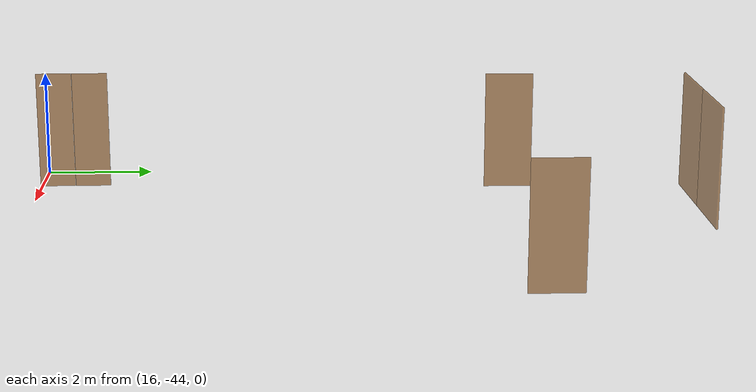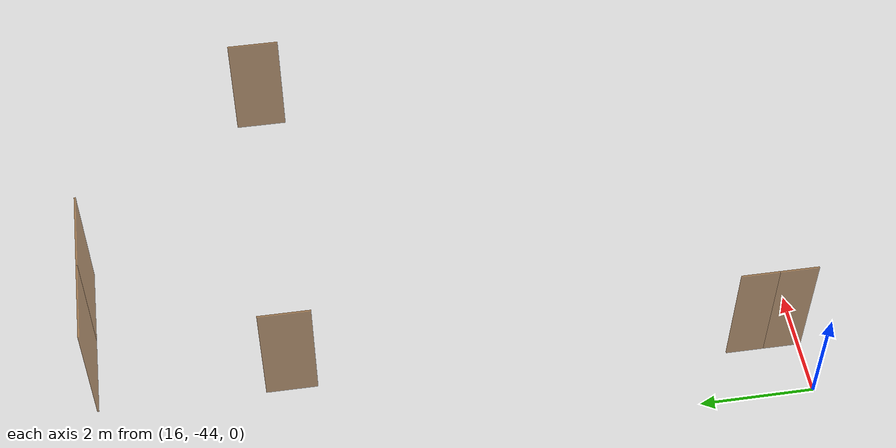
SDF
<sdf version="1.7">
 <world name="sim_world">
  <model name="door1">
   <pose>18.859094387755107 -31.709056122448985 0.0 0 0 3.141592653589793</pose>
   <link name="right">
    <pose>0.7511288265306124 0 1.11 0 0 0</pose>
    <visual name="right_visual">
     <geometry><box><size>1.4922576530612248 0.03 2.2</size></box></geometry>
     <material>
      <ambient>0.5 0.25 0 0.6</ambient>
      <diffuse>0.5 0.25 0 0.6</diffuse>
      <pbr><metal><metalness>0.0</metalness></metal></pbr>
     </material>
    </visual>
    <collision name="right_collision">
     <geometry><box><size>1.4922576530612248 0.03 2.2</size></box></geometry>
     <surface><contact><collide_bitmask>0x02</collide_bitmask></contact></surface>
    </collision>
    <inertial>
     <mass>50.0</mass>
     <inertia><ixx>20.17041666666667</ixx><iyy>29.445137096332484</iyy><izz>9.282220429665813</izz></inertia>
    </inertial>
   </link>
   <joint name="right_joint" type="revolute">
    <parent>world</parent>
    <child>right</child>
    <axis><xyz>0 0 -1</xyz><limit><lower>0</lower><upper>1.57</upper></limit></axis>
    <pose>0.7511288265306124 0 0 0 0 0</pose>
   </joint>
   <link name="left">
    <pose>-0.7511288265306124 0 1.11 0 0 0</pose>
    <visual name="left_visual">
     <geometry><box><size>1.4922576530612248 0.03 2.2</size></box></geometry>
     <material>
      <ambient>0.5 0.25 0 0.6</ambient>
      <diffuse>0.5 0.25 0 0.6</diffuse>
      <pbr><metal><metalness>0.0</metalness></metal></pbr>
     </material>
    </visual>
    <collision name="left_collision">
     <geometry><box><size>1.4922576530612248 0.03 2.2</size></box></geometry>
     <surface><contact><collide_bitmask>0x02</collide_bitmask></contact></surface>
    </collision>
    <inertial>
     <mass>50.0</mass>
     <inertia><ixx>20.17041666666667</ixx><iyy>29.445137096332484</iyy><izz>9.282220429665813</izz></inertia>
    </inertial>
   </link>
   <joint name="left_joint" type="revolute">
    <parent>world</parent>
    <child>left</child>
    <axis><xyz>0 0 -1</xyz><limit><lower>-1.57</lower><upper>0</upper></limit></axis>
    <pose>-0.7511288265306124 0 0 0 0 0</pose>
   </joint>
   <plugin name="register_component" filename="libregister_component.so">
    <component name="Door">
     <v_max_door>0.5</v_max_door>
     <a_max_door>0.3</a_max_door>
     <a_nom_door>0.15</a_nom_door>
     <dx_min_door>0.01</dx_min_door>
     <f_max_door>500.0</f_max_door>
     <ros_interface>true</ros_interface>
     <door name="door1" type="DoubleSwingDoor" left_joint_name="left_joint" right_joint_name="right_joint"/>
    </component>
   </plugin>
  </model>
  <model name="door2">
   <pose>17.345918367346943 -35.05772959183675 0.0 0 0 1.5707963267948966</pose>
   <link name="right">
    <pose>0 0 1.11 0 0 0</pose>
    <visual name="right_visual">
     <geometry><box><size>0.9003061224489792 0.03 2.2</size></box></geometry>
     <material>
      <ambient>0.5 0.25 0 0.6</ambient>
      <diffuse>0.5 0.25 0 0.6</diffuse>
      <pbr><metal><metalness>0.0</metalness></metal></pbr>
     </material>
    </visual>
    <collision name="right_collision">
     <geometry><box><size>0.9003061224489792 0.03 2.2</size></box></geometry>
     <surface><contact><collide_bitmask>0x02</collide_bitmask></contact></surface>
    </collision>
    <inertial>
     <mass>50.0</mass>
     <inertia><ixx>20.17041666666667</ixx><iyy>23.54396297549632</iyy><izz>3.381046308829652</izz></inertia>
    </inertial>
   </link>
   <joint name="right_joint" type="revolute">
    <parent>world</parent>
    <child>right</child>
    <axis><xyz>0 0 1</xyz><limit><lower>0</lower><upper>1.57</upper></limit></axis>
    <pose>0.4551530612244896 0 0 0 0 0</pose>
   </joint>
   <plugin name="register_component" filename="libregister_component.so">
    <component name="Door">
     <v_max_door>0.5</v_max_door>
     <a_max_door>0.3</a_max_door>
     <a_nom_door>0.15</a_nom_door>
     <dx_min_door>0.01</dx_min_door>
     <f_max_door>500.0</f_max_door>
     <ros_interface>true</ros_interface>
     <door name="door2" type="SwingDoor" left_joint_name="empty_joint" right_joint_name="right_joint"/>
    </component>
   </plugin>
  </model>
  <model name="door3">
   <pose>23.58721938775511 -35.04910714285715 0.0 0 0 1.5707963267948966</pose>
   <link name="right">
    <pose>0 0 1.11 0 0 0</pose>
    <visual name="right_visual">
     <geometry><box><size>0.9289795918367341 0.03 2.2</size></box></geometry>
     <material>
      <ambient>0.5 0.25 0 0.6</ambient>
      <diffuse>0.5 0.25 0 0.6</diffuse>
      <pbr><metal><metalness>0.0</metalness></metal></pbr>
     </material>
    </visual>
    <collision name="right_collision">
     <geometry><box><size>0.9289795918367341 0.03 2.2</size></box></geometry>
     <surface><contact><collide_bitmask>0x02</collide_bitmask></contact></surface>
    </collision>
    <inertial>
     <mass>50.0</mass>
     <inertia><ixx>20.17041666666667</ixx><iyy>23.762512841871445</iyy><izz>3.599596175204771</izz></inertia>
    </inertial>
   </link>
   <joint name="right_joint" type="prismatic">
    <parent>world</parent>
    <child>right</child>
    <axis>
     <xyz>1 0 0</xyz>
     <limit><lower>0.0</lower><upper>0.9389795918367341</upper><effort>500.0</effort></limit>
    </axis>
   </joint>
   <plugin name="register_component" filename="libregister_component.so">
    <component name="Door">
     <v_max_door>0.2</v_max_door>
     <a_max_door>0.2</a_max_door>
     <a_nom_door>0.08</a_nom_door>
     <dx_min_door>0.001</dx_min_door>
     <f_max_door>100.0</f_max_door>
     <ros_interface>true</ros_interface>
     <door name="door3" type="SlidingDoor" left_joint_name="empty_joint" right_joint_name="right_joint"/>
    </component>
   </plugin>
  </model>
  <model name="door4">
   <pose>16.988928571428577 -43.36737244897961 0.0 0 0 1.5707963267948966</pose>
   <link name="right">
    <pose>0.338354591836735 0 1.11 0 0 0</pose>
    <visual name="right_visual">
     <geometry><box><size>0.66670918367347 0.03 2.2</size></box></geometry>
     <material>
      <ambient>0.5 0.25 0 0.6</ambient>
      <diffuse>0.5 0.25 0 0.6</diffuse>
      <pbr><metal><metalness>0.0</metalness></metal></pbr>
     </material>
    </visual>
    <collision name="right_collision">
     <geometry><box><size>0.66670918367347 0.03 2.2</size></box></geometry>
     <surface><contact><collide_bitmask>0x02</collide_bitmask></contact></surface>
    </collision>
    <inertial>
     <mass>50.0</mass>
     <inertia><ixx>20.17041666666667</ixx><iyy>22.01875473164394</iyy><izz>1.8558380649772699</izz></inertia>
    </inertial>
   </link>
   <joint name="right_joint" type="revolute">
    <parent>world</parent>
    <child>right</child>
    <axis><xyz>0 0 1</xyz><limit><lower>0</lower><upper>1.57</upper></limit></axis>
    <pose>0.338354591836735 0 0 0 0 0</pose>
   </joint>
   <link name="left">
    <pose>-0.338354591836735 0 1.11 0 0 0</pose>
    <visual name="left_visual">
     <geometry><box><size>0.66670918367347 0.03 2.2</size></box></geometry>
     <material>
      <ambient>0.5 0.25 0 0.6</ambient>
      <diffuse>0.5 0.25 0 0.6</diffuse>
      <pbr><metal><metalness>0.0</metalness></metal></pbr>
     </material>
    </visual>
    <collision name="left_collision">
     <geometry><box><size>0.66670918367347 0.03 2.2</size></box></geometry>
     <surface><contact><collide_bitmask>0x02</collide_bitmask></contact></surface>
    </collision>
    <inertial>
     <mass>50.0</mass>
     <inertia><ixx>20.17041666666667</ixx><iyy>22.01875473164394</iyy><izz>1.8558380649772699</izz></inertia>
    </inertial>
   </link>
   <joint name="left_joint" type="revolute">
    <parent>world</parent>
    <child>left</child>
    <axis><xyz>0 0 1</xyz><limit><lower>-1.57</lower><upper>0</upper></limit></axis>
    <pose>-0.338354591836735 0 0 0 0 0</pose>
   </joint>
   <plugin name="register_component" filename="libregister_component.so">
    <component name="Door">
     <v_max_door>0.5</v_max_door>
     <a_max_door>0.3</a_max_door>
     <a_nom_door>0.15</a_nom_door>
     <dx_min_door>0.01</dx_min_door>
     <f_max_door>500.0</f_max_door>
     <ros_interface>true</ros_interface>
     <door name="door4" type="DoubleSwingDoor" left_joint_name="left_joint" right_joint_name="right_joint"/>
    </component>
   </plugin>
  </model>
 </world>
</sdf>
